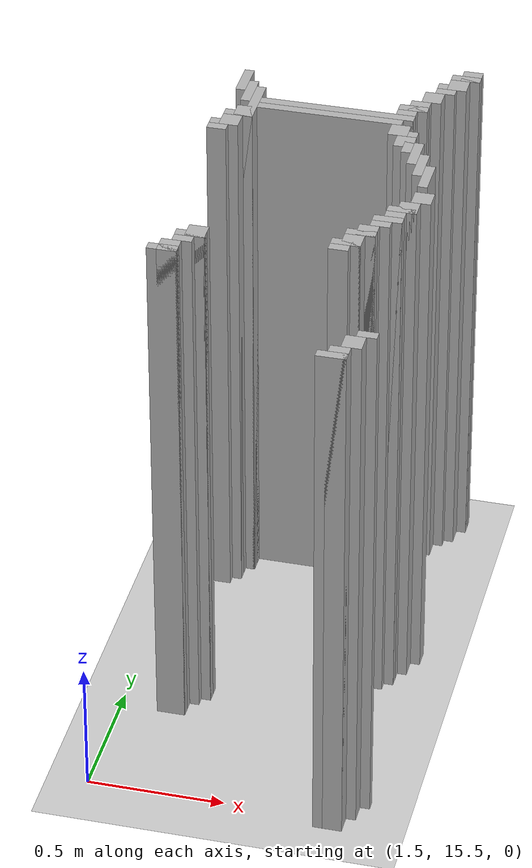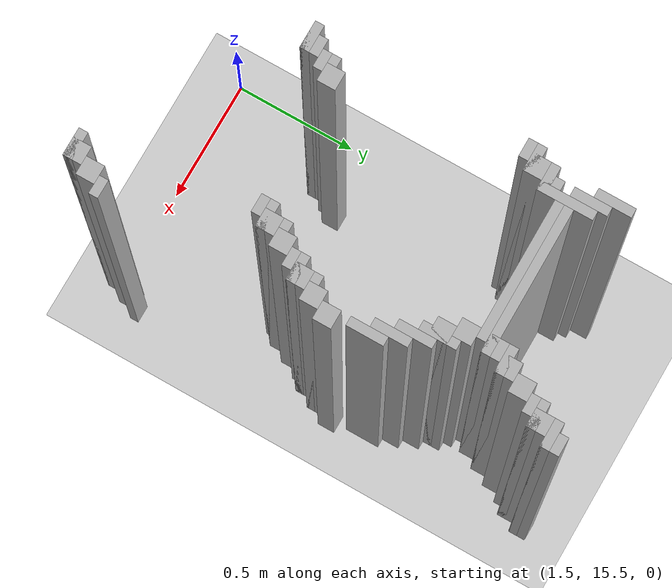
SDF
<sdf version="1.6">
 <world name="slam_world">
  <model name="ground_plane">
   <static>true</static>
   <link name="link">
    <collision name="collision">
     <geometry><plane><normal>0 0 1</normal><size>100 100</size></plane></geometry>
    </collision>
    <visual name="visual">
     <geometry><plane><normal>0 0 1</normal><size>100 100</size></plane></geometry>
     <material>
      <ambient>0.8 0.8 0.8 1</ambient>
      <diffuse>0.8 0.8 0.8 1</diffuse>
      <specular>0.8 0.8 0.8 1</specular>
     </material>
    </visual>
   </link>
  </model>
  <model name="wall_13">
   <static>true</static>
   <pose>2.470997679814385 17.296983758700694 1.0 0 0 0</pose>
   <link name="link">
    <collision name="collision">
     <geometry><box><size>0.06960556844547564 0.06960556844547564 2.0</size></box></geometry>
    </collision>
    <visual name="visual">
     <geometry><box><size>0.06960556844547564 0.06960556844547564 2.0</size></box></geometry>
     <material><ambient>0.5 0.5 0.5 1</ambient><diffuse>0.7 0.7 0.7 1</diffuse></material>
    </visual>
   </link>
  </model>
  <model name="wall_33">
   <static>true</static>
   <pose>2.453596287703016 17.279582366589327 1.0 0 0 0</pose>
   <link name="link">
    <collision name="collision">
     <geometry><box><size>0.10440835266821345 0.03480278422273782 2.0</size></box></geometry>
    </collision>
    <visual name="visual">
     <geometry><box><size>0.10440835266821345 0.03480278422273782 2.0</size></box></geometry>
     <material><ambient>0.5 0.5 0.5 1</ambient><diffuse>0.7 0.7 0.7 1</diffuse></material>
    </visual>
   </link>
  </model>
  <model name="wall_53">
   <static>true</static>
   <pose>2.436194895591647 17.22737819025522 1.0 0 0 0</pose>
   <link name="link">
    <collision name="collision">
     <geometry><box><size>0.06960556844547564 0.06960556844547564 2.0</size></box></geometry>
    </collision>
    <visual name="visual">
     <geometry><box><size>0.06960556844547564 0.06960556844547564 2.0</size></box></geometry>
     <material><ambient>0.5 0.5 0.5 1</ambient><diffuse>0.7 0.7 0.7 1</diffuse></material>
    </visual>
   </link>
  </model>
  <model name="wall_73">
   <static>true</static>
   <pose>2.4187935034802783 17.209976798143853 1.0 0 0 0</pose>
   <link name="link">
    <collision name="collision">
     <geometry><box><size>0.10440835266821345 0.03480278422273782 2.0</size></box></geometry>
    </collision>
    <visual name="visual">
     <geometry><box><size>0.10440835266821345 0.03480278422273782 2.0</size></box></geometry>
     <material><ambient>0.5 0.5 0.5 1</ambient><diffuse>0.7 0.7 0.7 1</diffuse></material>
    </visual>
   </link>
  </model>
  <model name="wall_92">
   <static>true</static>
   <pose>2.4013921113689096 17.17517401392111 1.0 0 0 0</pose>
   <link name="link">
    <collision name="collision">
     <geometry><box><size>0.06960556844547564 0.03480278422273782 2.0</size></box></geometry>
    </collision>
    <visual name="visual">
     <geometry><box><size>0.06960556844547564 0.03480278422273782 2.0</size></box></geometry>
     <material><ambient>0.5 0.5 0.5 1</ambient><diffuse>0.7 0.7 0.7 1</diffuse></material>
    </visual>
   </link>
  </model>
  <model name="wall_102">
   <static>true</static>
   <pose>1.6879350348027842 17.08816705336427 1.0 0 0 0</pose>
   <link name="link">
    <collision name="collision">
     <geometry><box><size>0.03480278422273782 0.13921113689095127 2.0</size></box></geometry>
    </collision>
    <visual name="visual">
     <geometry><box><size>0.03480278422273782 0.13921113689095127 2.0</size></box></geometry>
     <material><ambient>0.5 0.5 0.5 1</ambient><diffuse>0.7 0.7 0.7 1</diffuse></material>
    </visual>
   </link>
  </model>
  <model name="wall_103">
   <static>true</static>
   <pose>2.3665893271461718 17.122969837587007 1.0 0 0 0</pose>
   <link name="link">
    <collision name="collision">
     <geometry><box><size>0.06960556844547564 0.06960556844547564 2.0</size></box></geometry>
    </collision>
    <visual name="visual">
     <geometry><box><size>0.06960556844547564 0.06960556844547564 2.0</size></box></geometry>
     <material><ambient>0.5 0.5 0.5 1</ambient><diffuse>0.7 0.7 0.7 1</diffuse></material>
    </visual>
   </link>
  </model>
  <model name="wall_122">
   <static>true</static>
   <pose>1.722737819025522 17.01856148491879 1.0 0 0 0</pose>
   <link name="link">
    <collision name="collision">
     <geometry><box><size>0.03480278422273782 0.13921113689095127 2.0</size></box></geometry>
    </collision>
    <visual name="visual">
     <geometry><box><size>0.03480278422273782 0.13921113689095127 2.0</size></box></geometry>
     <material><ambient>0.5 0.5 0.5 1</ambient><diffuse>0.7 0.7 0.7 1</diffuse></material>
    </visual>
   </link>
  </model>
  <model name="wall_123">
   <static>true</static>
   <pose>2.331786542923434 17.053364269141532 1.0 0 0 0</pose>
   <link name="link">
    <collision name="collision">
     <geometry><box><size>0.06960556844547564 0.06960556844547564 2.0</size></box></geometry>
    </collision>
    <visual name="visual">
     <geometry><box><size>0.06960556844547564 0.06960556844547564 2.0</size></box></geometry>
     <material><ambient>0.5 0.5 0.5 1</ambient><diffuse>0.7 0.7 0.7 1</diffuse></material>
    </visual>
   </link>
  </model>
  <model name="wall_142">
   <static>true</static>
   <pose>1.75754060324826 16.948955916473317 1.0 0 0 0</pose>
   <link name="link">
    <collision name="collision">
     <geometry><box><size>0.03480278422273782 0.2088167053364269 2.0</size></box></geometry>
    </collision>
    <visual name="visual">
     <geometry><box><size>0.03480278422273782 0.2088167053364269 2.0</size></box></geometry>
     <material><ambient>0.5 0.5 0.5 1</ambient><diffuse>0.7 0.7 0.7 1</diffuse></material>
    </visual>
   </link>
  </model>
  <model name="wall_143">
   <static>true</static>
   <pose>2.3143851508120648 17.035962877030162 1.0 0 0 0</pose>
   <link name="link">
    <collision name="collision">
     <geometry><box><size>0.10440835266821345 0.03480278422273782 2.0</size></box></geometry>
    </collision>
    <visual name="visual">
     <geometry><box><size>0.10440835266821345 0.03480278422273782 2.0</size></box></geometry>
     <material><ambient>0.5 0.5 0.5 1</ambient><diffuse>0.7 0.7 0.7 1</diffuse></material>
    </visual>
   </link>
  </model>
  <model name="wall_162">
   <static>true</static>
   <pose>2.296983758700696 16.983758700696054 1.0 0 0 0</pose>
   <link name="link">
    <collision name="collision">
     <geometry><box><size>0.06960556844547564 0.06960556844547564 2.0</size></box></geometry>
    </collision>
    <visual name="visual">
     <geometry><box><size>0.06960556844547564 0.06960556844547564 2.0</size></box></geometry>
     <material><ambient>0.5 0.5 0.5 1</ambient><diffuse>0.7 0.7 0.7 1</diffuse></material>
    </visual>
   </link>
  </model>
  <model name="wall_172">
   <static>true</static>
   <pose>2.053364269141531 16.966357308584687 1.0 0 0 0</pose>
   <link name="link">
    <collision name="collision">
     <geometry><box><size>0.5568445475638051 0.03480278422273782 2.0</size></box></geometry>
    </collision>
    <visual name="visual">
     <geometry><box><size>0.5568445475638051 0.03480278422273782 2.0</size></box></geometry>
     <material><ambient>0.5 0.5 0.5 1</ambient><diffuse>0.7 0.7 0.7 1</diffuse></material>
    </visual>
   </link>
  </model>
  <model name="wall_183">
   <static>true</static>
   <pose>2.0359628770301623 16.93155452436195 1.0 0 0 0</pose>
   <link name="link">
    <collision name="collision">
     <geometry><box><size>0.5220417633410672 0.03480278422273782 2.0</size></box></geometry>
    </collision>
    <visual name="visual">
     <geometry><box><size>0.5220417633410672 0.03480278422273782 2.0</size></box></geometry>
     <material><ambient>0.5 0.5 0.5 1</ambient><diffuse>0.7 0.7 0.7 1</diffuse></material>
    </visual>
   </link>
  </model>
  <model name="wall_193">
   <static>true</static>
   <pose>1.740139211136891 16.87935034802784 1.0 0 0 0</pose>
   <link name="link">
    <collision name="collision">
     <geometry><box><size>0.06960556844547564 0.06960556844547564 2.0</size></box></geometry>
    </collision>
    <visual name="visual">
     <geometry><box><size>0.06960556844547564 0.06960556844547564 2.0</size></box></geometry>
     <material><ambient>0.5 0.5 0.5 1</ambient><diffuse>0.7 0.7 0.7 1</diffuse></material>
    </visual>
   </link>
  </model>
  <model name="wall_194">
   <static>true</static>
   <pose>2.296983758700696 16.87935034802784 1.0 0 0 0</pose>
   <link name="link">
    <collision name="collision">
     <geometry><box><size>0.06960556844547564 0.06960556844547564 2.0</size></box></geometry>
    </collision>
    <visual name="visual">
     <geometry><box><size>0.06960556844547564 0.06960556844547564 2.0</size></box></geometry>
     <material><ambient>0.5 0.5 0.5 1</ambient><diffuse>0.7 0.7 0.7 1</diffuse></material>
    </visual>
   </link>
  </model>
  <model name="wall_202">
   <static>true</static>
   <pose>1.722737819025522 16.86194895591647 1.0 0 0 0</pose>
   <link name="link">
    <collision name="collision">
     <geometry><box><size>0.10440835266821345 0.03480278422273782 2.0</size></box></geometry>
    </collision>
    <visual name="visual">
     <geometry><box><size>0.10440835266821345 0.03480278422273782 2.0</size></box></geometry>
     <material><ambient>0.5 0.5 0.5 1</ambient><diffuse>0.7 0.7 0.7 1</diffuse></material>
    </visual>
   </link>
  </model>
  <model name="wall_203">
   <static>true</static>
   <pose>2.3491879350348026 16.809744779582367 1.0 0 0 0</pose>
   <link name="link">
    <collision name="collision">
     <geometry><box><size>0.03480278422273782 0.13921113689095127 2.0</size></box></geometry>
    </collision>
    <visual name="visual">
     <geometry><box><size>0.03480278422273782 0.13921113689095127 2.0</size></box></geometry>
     <material><ambient>0.5 0.5 0.5 1</ambient><diffuse>0.7 0.7 0.7 1</diffuse></material>
    </visual>
   </link>
  </model>
  <model name="wall_211">
   <static>true</static>
   <pose>1.705336426914153 16.809744779582367 1.0 0 0 0</pose>
   <link name="link">
    <collision name="collision">
     <geometry><box><size>0.06960556844547564 0.06960556844547564 2.0</size></box></geometry>
    </collision>
    <visual name="visual">
     <geometry><box><size>0.06960556844547564 0.06960556844547564 2.0</size></box></geometry>
     <material><ambient>0.5 0.5 0.5 1</ambient><diffuse>0.7 0.7 0.7 1</diffuse></material>
    </visual>
   </link>
  </model>
  <model name="wall_212">
   <static>true</static>
   <pose>2.331786542923434 16.809744779582367 1.0 0 0 0</pose>
   <link name="link">
    <collision name="collision">
     <geometry><box><size>0.06960556844547564 0.06960556844547564 2.0</size></box></geometry>
    </collision>
    <visual name="visual">
     <geometry><box><size>0.06960556844547564 0.06960556844547564 2.0</size></box></geometry>
     <material><ambient>0.5 0.5 0.5 1</ambient><diffuse>0.7 0.7 0.7 1</diffuse></material>
    </visual>
   </link>
  </model>
  <model name="wall_220">
   <static>true</static>
   <pose>1.6879350348027842 16.792343387470996 1.0 0 0 0</pose>
   <link name="link">
    <collision name="collision">
     <geometry><box><size>0.10440835266821345 0.03480278422273782 2.0</size></box></geometry>
    </collision>
    <visual name="visual">
     <geometry><box><size>0.10440835266821345 0.03480278422273782 2.0</size></box></geometry>
     <material><ambient>0.5 0.5 0.5 1</ambient><diffuse>0.7 0.7 0.7 1</diffuse></material>
    </visual>
   </link>
  </model>
  <model name="wall_221">
   <static>true</static>
   <pose>2.3839907192575405 16.74013921113689 1.0 0 0 0</pose>
   <link name="link">
    <collision name="collision">
     <geometry><box><size>0.03480278422273782 0.13921113689095127 2.0</size></box></geometry>
    </collision>
    <visual name="visual">
     <geometry><box><size>0.03480278422273782 0.13921113689095127 2.0</size></box></geometry>
     <material><ambient>0.5 0.5 0.5 1</ambient><diffuse>0.7 0.7 0.7 1</diffuse></material>
    </visual>
   </link>
  </model>
  <model name="wall_229">
   <static>true</static>
   <pose>1.6705336426914152 16.75754060324826 1.0 0 0 0</pose>
   <link name="link">
    <collision name="collision">
     <geometry><box><size>0.06960556844547564 0.03480278422273782 2.0</size></box></geometry>
    </collision>
    <visual name="visual">
     <geometry><box><size>0.06960556844547564 0.03480278422273782 2.0</size></box></geometry>
     <material><ambient>0.5 0.5 0.5 1</ambient><diffuse>0.7 0.7 0.7 1</diffuse></material>
    </visual>
   </link>
  </model>
  <model name="wall_234">
   <static>true</static>
   <pose>2.4187935034802783 16.670533642691414 1.0 0 0 0</pose>
   <link name="link">
    <collision name="collision">
     <geometry><box><size>0.03480278422273782 0.13921113689095127 2.0</size></box></geometry>
    </collision>
    <visual name="visual">
     <geometry><box><size>0.03480278422273782 0.13921113689095127 2.0</size></box></geometry>
     <material><ambient>0.5 0.5 0.5 1</ambient><diffuse>0.7 0.7 0.7 1</diffuse></material>
    </visual>
   </link>
  </model>
  <model name="wall_243">
   <static>true</static>
   <pose>2.453596287703016 16.60092807424594 1.0 0 0 0</pose>
   <link name="link">
    <collision name="collision">
     <geometry><box><size>0.03480278422273782 0.13921113689095127 2.0</size></box></geometry>
    </collision>
    <visual name="visual">
     <geometry><box><size>0.03480278422273782 0.13921113689095127 2.0</size></box></geometry>
     <material><ambient>0.5 0.5 0.5 1</ambient><diffuse>0.7 0.7 0.7 1</diffuse></material>
    </visual>
   </link>
  </model>
  <model name="wall_282">
   <static>true</static>
   <pose>2.470997679814385 16.46171693735499 1.0 0 0 0</pose>
   <link name="link">
    <collision name="collision">
     <geometry><box><size>0.06960556844547564 0.06960556844547564 2.0</size></box></geometry>
    </collision>
    <visual name="visual">
     <geometry><box><size>0.06960556844547564 0.06960556844547564 2.0</size></box></geometry>
     <material><ambient>0.5 0.5 0.5 1</ambient><diffuse>0.7 0.7 0.7 1</diffuse></material>
    </visual>
   </link>
  </model>
  <model name="wall_305">
   <static>true</static>
   <pose>2.436194895591647 16.39211136890951 1.0 0 0 0</pose>
   <link name="link">
    <collision name="collision">
     <geometry><box><size>0.06960556844547564 0.06960556844547564 2.0</size></box></geometry>
    </collision>
    <visual name="visual">
     <geometry><box><size>0.06960556844547564 0.06960556844547564 2.0</size></box></geometry>
     <material><ambient>0.5 0.5 0.5 1</ambient><diffuse>0.7 0.7 0.7 1</diffuse></material>
    </visual>
   </link>
  </model>
  <model name="wall_319">
   <static>true</static>
   <pose>2.4187935034802783 16.374709976798144 1.0 0 0 0</pose>
   <link name="link">
    <collision name="collision">
     <geometry><box><size>0.10440835266821345 0.03480278422273782 2.0</size></box></geometry>
    </collision>
    <visual name="visual">
     <geometry><box><size>0.10440835266821345 0.03480278422273782 2.0</size></box></geometry>
     <material><ambient>0.5 0.5 0.5 1</ambient><diffuse>0.7 0.7 0.7 1</diffuse></material>
    </visual>
   </link>
  </model>
  <model name="wall_333">
   <static>true</static>
   <pose>2.4013921113689096 16.322505800464036 1.0 0 0 0</pose>
   <link name="link">
    <collision name="collision">
     <geometry><box><size>0.06960556844547564 0.06960556844547564 2.0</size></box></geometry>
    </collision>
    <visual name="visual">
     <geometry><box><size>0.06960556844547564 0.06960556844547564 2.0</size></box></geometry>
     <material><ambient>0.5 0.5 0.5 1</ambient><diffuse>0.7 0.7 0.7 1</diffuse></material>
    </visual>
   </link>
  </model>
  <model name="wall_347">
   <static>true</static>
   <pose>2.3839907192575405 16.30510440835267 1.0 0 0 0</pose>
   <link name="link">
    <collision name="collision">
     <geometry><box><size>0.10440835266821345 0.03480278422273782 2.0</size></box></geometry>
    </collision>
    <visual name="visual">
     <geometry><box><size>0.10440835266821345 0.03480278422273782 2.0</size></box></geometry>
     <material><ambient>0.5 0.5 0.5 1</ambient><diffuse>0.7 0.7 0.7 1</diffuse></material>
    </visual>
   </link>
  </model>
  <model name="wall_360">
   <static>true</static>
   <pose>2.3665893271461718 16.270301624129928 1.0 0 0 0</pose>
   <link name="link">
    <collision name="collision">
     <geometry><box><size>0.06960556844547564 0.03480278422273782 2.0</size></box></geometry>
    </collision>
    <visual name="visual">
     <geometry><box><size>0.06960556844547564 0.03480278422273782 2.0</size></box></geometry>
     <material><ambient>0.5 0.5 0.5 1</ambient><diffuse>0.7 0.7 0.7 1</diffuse></material>
    </visual>
   </link>
  </model>
  <model name="wall_369">
   <static>true</static>
   <pose>2.331786542923434 16.218097447795824 1.0 0 0 0</pose>
   <link name="link">
    <collision name="collision">
     <geometry><box><size>0.06960556844547564 0.06960556844547564 2.0</size></box></geometry>
    </collision>
    <visual name="visual">
     <geometry><box><size>0.06960556844547564 0.06960556844547564 2.0</size></box></geometry>
     <material><ambient>0.5 0.5 0.5 1</ambient><diffuse>0.7 0.7 0.7 1</diffuse></material>
    </visual>
   </link>
  </model>
  <model name="wall_382">
   <static>true</static>
   <pose>2.3143851508120648 16.200696055684453 1.0 0 0 0</pose>
   <link name="link">
    <collision name="collision">
     <geometry><box><size>0.10440835266821345 0.03480278422273782 2.0</size></box></geometry>
    </collision>
    <visual name="visual">
     <geometry><box><size>0.10440835266821345 0.03480278422273782 2.0</size></box></geometry>
     <material><ambient>0.5 0.5 0.5 1</ambient><diffuse>0.7 0.7 0.7 1</diffuse></material>
    </visual>
   </link>
  </model>
  <model name="wall_391">
   <static>true</static>
   <pose>2.296983758700696 16.14849187935035 1.0 0 0 0</pose>
   <link name="link">
    <collision name="collision">
     <geometry><box><size>0.06960556844547564 0.06960556844547564 2.0</size></box></geometry>
    </collision>
    <visual name="visual">
     <geometry><box><size>0.06960556844547564 0.06960556844547564 2.0</size></box></geometry>
     <material><ambient>0.5 0.5 0.5 1</ambient><diffuse>0.7 0.7 0.7 1</diffuse></material>
    </visual>
   </link>
  </model>
  <model name="wall_405">
   <static>true</static>
   <pose>2.279582366589327 16.13109048723898 1.0 0 0 0</pose>
   <link name="link">
    <collision name="collision">
     <geometry><box><size>0.10440835266821345 0.03480278422273782 2.0</size></box></geometry>
    </collision>
    <visual name="visual">
     <geometry><box><size>0.10440835266821345 0.03480278422273782 2.0</size></box></geometry>
     <material><ambient>0.5 0.5 0.5 1</ambient><diffuse>0.7 0.7 0.7 1</diffuse></material>
    </visual>
   </link>
  </model>
  <model name="wall_417">
   <static>true</static>
   <pose>1.7749419953596286 16.07888631090487 1.0 0 0 0</pose>
   <link name="link">
    <collision name="collision">
     <geometry><box><size>0.06960556844547564 0.06960556844547564 2.0</size></box></geometry>
    </collision>
    <visual name="visual">
     <geometry><box><size>0.06960556844547564 0.06960556844547564 2.0</size></box></geometry>
     <material><ambient>0.5 0.5 0.5 1</ambient><diffuse>0.7 0.7 0.7 1</diffuse></material>
    </visual>
   </link>
  </model>
  <model name="wall_418">
   <static>true</static>
   <pose>2.262180974477958 16.09628770301624 1.0 0 0 0</pose>
   <link name="link">
    <collision name="collision">
     <geometry><box><size>0.06960556844547564 0.03480278422273782 2.0</size></box></geometry>
    </collision>
    <visual name="visual">
     <geometry><box><size>0.06960556844547564 0.03480278422273782 2.0</size></box></geometry>
     <material><ambient>0.5 0.5 0.5 1</ambient><diffuse>0.7 0.7 0.7 1</diffuse></material>
    </visual>
   </link>
  </model>
  <model name="wall_430">
   <static>true</static>
   <pose>1.75754060324826 16.061484918793504 1.0 0 0 0</pose>
   <link name="link">
    <collision name="collision">
     <geometry><box><size>0.10440835266821345 0.03480278422273782 2.0</size></box></geometry>
    </collision>
    <visual name="visual">
     <geometry><box><size>0.10440835266821345 0.03480278422273782 2.0</size></box></geometry>
     <material><ambient>0.5 0.5 0.5 1</ambient><diffuse>0.7 0.7 0.7 1</diffuse></material>
    </visual>
   </link>
  </model>
  <model name="wall_444">
   <static>true</static>
   <pose>1.740139211136891 16.026682134570766 1.0 0 0 0</pose>
   <link name="link">
    <collision name="collision">
     <geometry><box><size>0.06960556844547564 0.03480278422273782 2.0</size></box></geometry>
    </collision>
    <visual name="visual">
     <geometry><box><size>0.06960556844547564 0.03480278422273782 2.0</size></box></geometry>
     <material><ambient>0.5 0.5 0.5 1</ambient><diffuse>0.7 0.7 0.7 1</diffuse></material>
    </visual>
   </link>
  </model>
  <model name="wall_458">
   <static>true</static>
   <pose>1.705336426914153 15.974477958236658 1.0 0 0 0</pose>
   <link name="link">
    <collision name="collision">
     <geometry><box><size>0.06960556844547564 0.06960556844547564 2.0</size></box></geometry>
    </collision>
    <visual name="visual">
     <geometry><box><size>0.06960556844547564 0.06960556844547564 2.0</size></box></geometry>
     <material><ambient>0.5 0.5 0.5 1</ambient><diffuse>0.7 0.7 0.7 1</diffuse></material>
    </visual>
   </link>
  </model>
  <model name="wall_472">
   <static>true</static>
   <pose>1.6879350348027842 15.95707656612529 1.0 0 0 0</pose>
   <link name="link">
    <collision name="collision">
     <geometry><box><size>0.10440835266821345 0.03480278422273782 2.0</size></box></geometry>
    </collision>
    <visual name="visual">
     <geometry><box><size>0.10440835266821345 0.03480278422273782 2.0</size></box></geometry>
     <material><ambient>0.5 0.5 0.5 1</ambient><diffuse>0.7 0.7 0.7 1</diffuse></material>
    </visual>
   </link>
  </model>
  <model name="wall_592">
   <static>true</static>
   <pose>2.470997679814385 15.609048723897912 1.0 0 0 0</pose>
   <link name="link">
    <collision name="collision">
     <geometry><box><size>0.06960556844547564 0.03480278422273782 2.0</size></box></geometry>
    </collision>
    <visual name="visual">
     <geometry><box><size>0.06960556844547564 0.03480278422273782 2.0</size></box></geometry>
     <material><ambient>0.5 0.5 0.5 1</ambient><diffuse>0.7 0.7 0.7 1</diffuse></material>
    </visual>
   </link>
  </model>
  <model name="wall_609">
   <static>true</static>
   <pose>2.436194895591647 15.556844547563804 1.0 0 0 0</pose>
   <link name="link">
    <collision name="collision">
     <geometry><box><size>0.06960556844547564 0.06960556844547564 2.0</size></box></geometry>
    </collision>
    <visual name="visual">
     <geometry><box><size>0.06960556844547564 0.06960556844547564 2.0</size></box></geometry>
     <material><ambient>0.5 0.5 0.5 1</ambient><diffuse>0.7 0.7 0.7 1</diffuse></material>
    </visual>
   </link>
  </model>
  <model name="wall_626">
   <static>true</static>
   <pose>2.4013921113689096 15.48723897911833 1.0 0 0 0</pose>
   <link name="link">
    <collision name="collision">
     <geometry><box><size>0.06960556844547564 0.06960556844547564 2.0</size></box></geometry>
    </collision>
    <visual name="visual">
     <geometry><box><size>0.06960556844547564 0.06960556844547564 2.0</size></box></geometry>
     <material><ambient>0.5 0.5 0.5 1</ambient><diffuse>0.7 0.7 0.7 1</diffuse></material>
    </visual>
   </link>
  </model>
  <model name="wall_643">
   <static>true</static>
   <pose>2.3839907192575405 15.46983758700696 1.0 0 0 0</pose>
   <link name="link">
    <collision name="collision">
     <geometry><box><size>0.10440835266821345 0.03480278422273782 2.0</size></box></geometry>
    </collision>
    <visual name="visual">
     <geometry><box><size>0.10440835266821345 0.03480278422273782 2.0</size></box></geometry>
     <material><ambient>0.5 0.5 0.5 1</ambient><diffuse>0.7 0.7 0.7 1</diffuse></material>
    </visual>
   </link>
  </model>
 </world>
</sdf>
